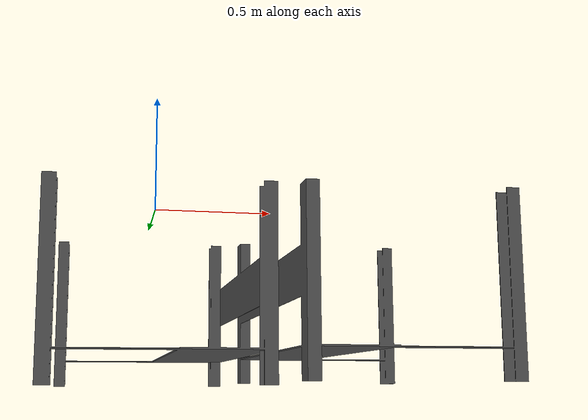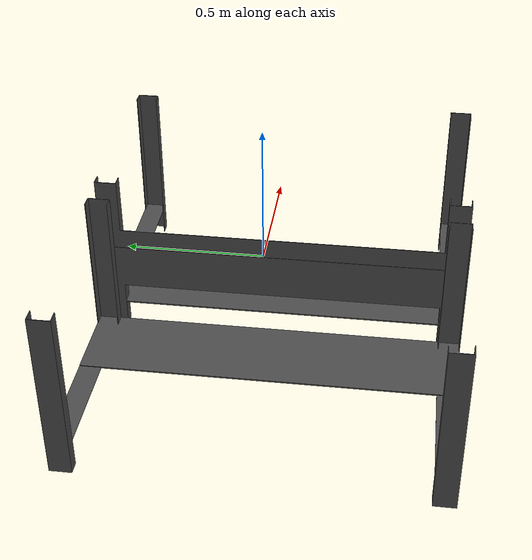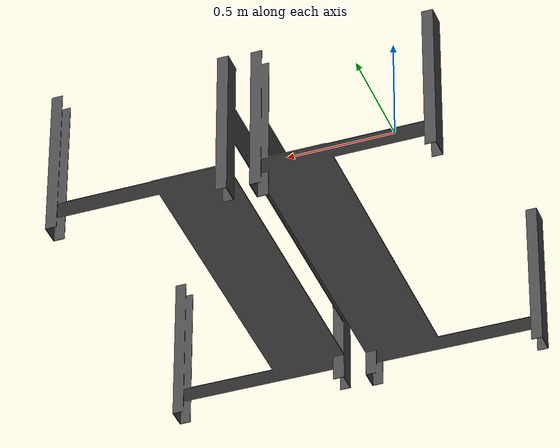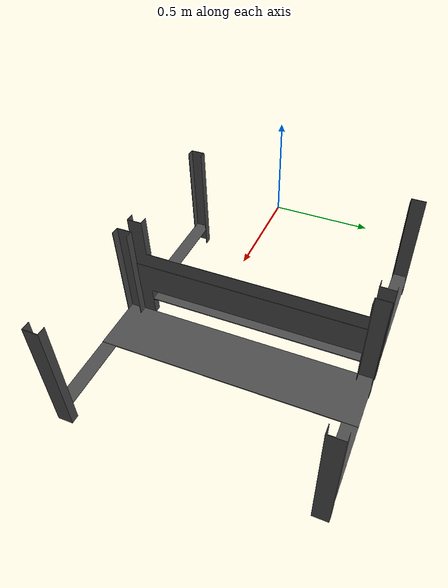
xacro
<?xml version="1.0"?>
<robot name="table">
  <link name="table_legs_origin">
    <visual>
      	<geometry>
          	<mesh filename="package://gen_utilities/meshes/table/table_legs.stl"
                scale="1 1 1"/>
      	</geometry>
	  	<material name="ABS" >
          	<color rgba="0.3 0.3 0.3 1.0" />
         </material>
    	</visual>
  </link>
</robot>
